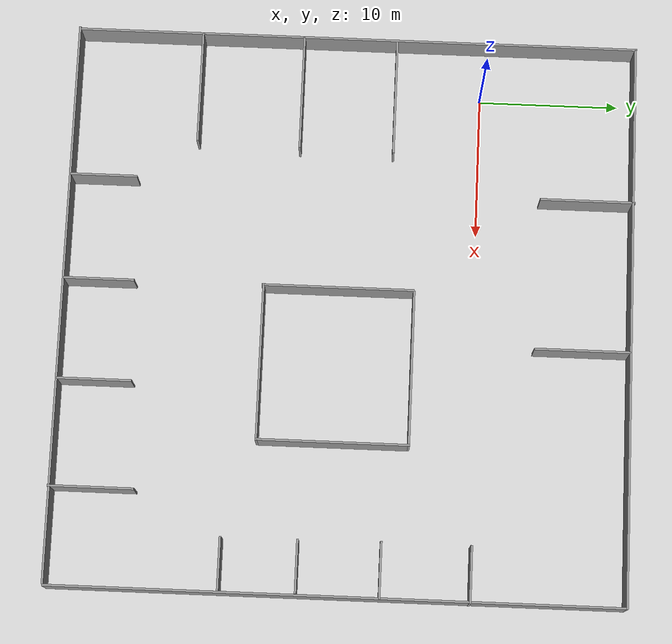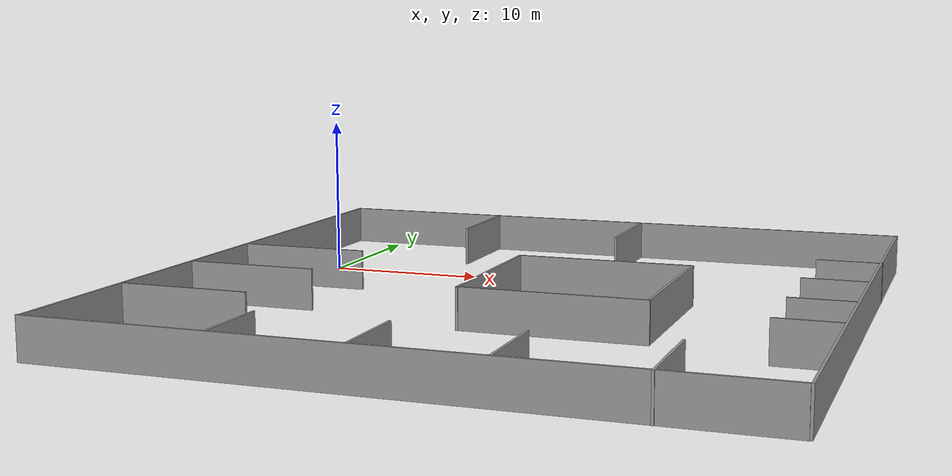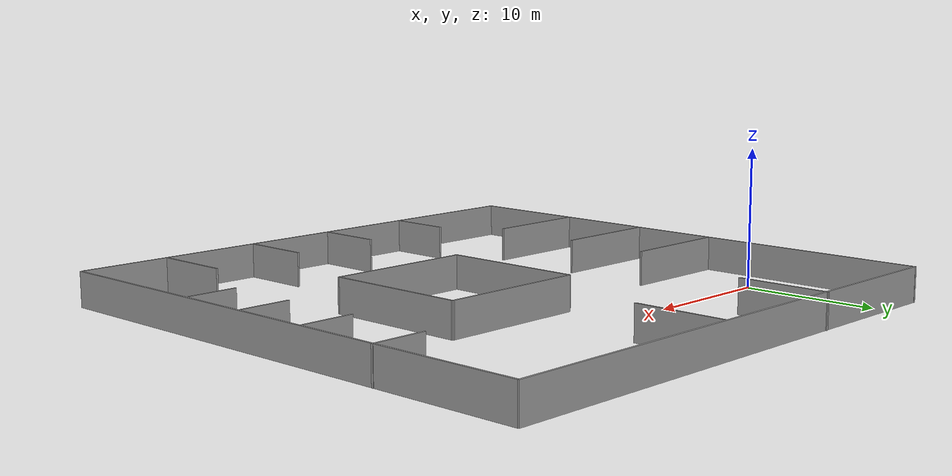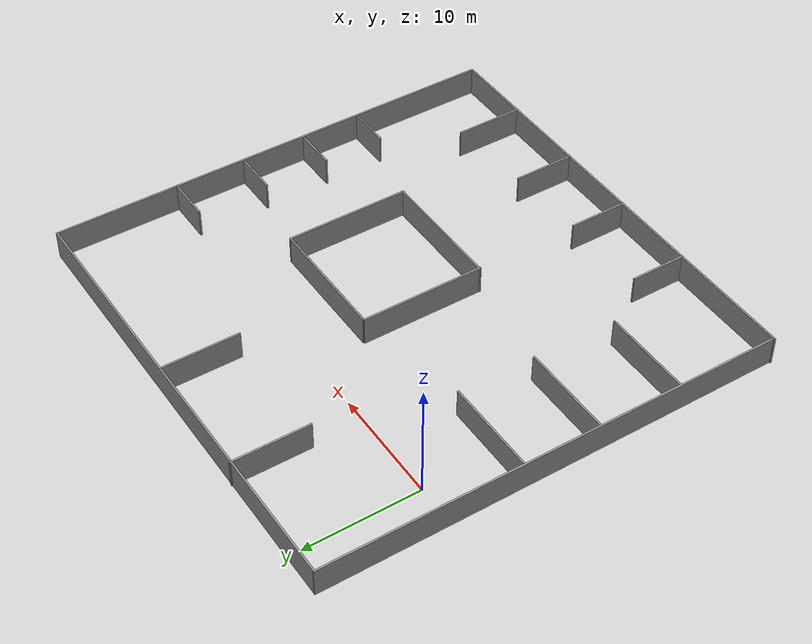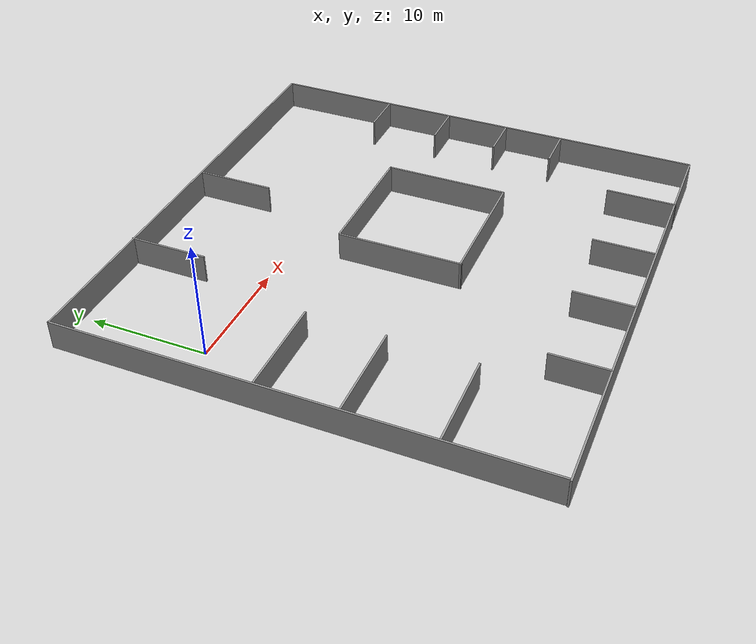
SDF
<?xml version='1.0'?>
<sdf version='1.6'>
  <model name='scrapyard_topview'>
    <pose frame=''>16.2894 -8.9905 0 0 -0 0</pose>
    <link name='Wall_0'>
      <collision name='Wall_0_Collision'>
        <geometry>
          <box>
            <size>40 0.15 2.5</size>
          </box>
        </geometry>
        <pose frame=''>0 0 1.25 0 -0 0</pose>
      </collision>
      <visual name='Wall_0_Visual'>
        <pose frame=''>0 0 1.25 0 -0 0</pose>
        <geometry>
          <box>
            <size>40 0.15 2.5</size>
          </box>
        </geometry>
        <material>
          <script>
            <uri>file://media/materials/scripts/gazebo.material</uri>
            <name>Gazebo/Grey</name>
          </script>
          <ambient>1 1 1 1</ambient>
        </material>
      </visual>
      <pose frame=''>-19.9344 0.077133 0 0 -0 1.5708</pose>
    </link>
    <link name='Wall_10'>
      <collision name='Wall_10_Collision'>
        <geometry>
          <box>
            <size>11.1232 0.15 2.5</size>
          </box>
        </geometry>
        <pose frame=''>0 0 1.25 0 -0 0</pose>
      </collision>
      <visual name='Wall_10_Visual'>
        <pose frame=''>0 0 1.25 0 -0 0</pose>
        <geometry>
          <box>
            <size>11.1232 0.15 2.5</size>
          </box>
        </geometry>
        <material>
          <script>
            <uri>file://media/materials/scripts/gazebo.material</uri>
            <name>Gazebo/Grey</name>
          </script>
          <ambient>1 1 1 1</ambient>
        </material>
      </visual>
      <pose frame=''>3.87286 -5.8997 0 0 -0 0</pose>
    </link>
    <link name='Wall_11'>
      <collision name='Wall_11_Collision'>
        <geometry>
          <box>
            <size>10.75 0.15 2.5</size>
          </box>
        </geometry>
        <pose frame=''>0 0 1.25 0 -0 0</pose>
      </collision>
      <visual name='Wall_11_Visual'>
        <pose frame=''>0 0 1.25 0 -0 0</pose>
        <geometry>
          <box>
            <size>10.75 0.15 2.5</size>
          </box>
        </geometry>
        <material>
          <script>
            <uri>file://media/materials/scripts/gazebo.material</uri>
            <name>Gazebo/Grey</name>
          </script>
          <ambient>1 1 1 1</ambient>
        </material>
      </visual>
      <pose frame=''>9.35939 -0.599696 0 0 -0 1.5708</pose>
    </link>
    <link name='Wall_12'>
      <collision name='Wall_12_Collision'>
        <geometry>
          <box>
            <size>11 0.15 2.5</size>
          </box>
        </geometry>
        <pose frame=''>0 0 1.25 0 -0 0</pose>
      </collision>
      <visual name='Wall_12_Visual'>
        <pose frame=''>0 0 1.25 0 -0 0</pose>
        <geometry>
          <box>
            <size>11 0.15 2.5</size>
          </box>
        </geometry>
        <material>
          <script>
            <uri>file://media/materials/scripts/gazebo.material</uri>
            <name>Gazebo/Grey</name>
          </script>
          <ambient>1 1 1 1</ambient>
        </material>
      </visual>
      <pose frame=''>3.93439 4.7003 0 0 -0 3.14159</pose>
    </link>
    <link name='Wall_14'>
      <collision name='Wall_14_Collision'>
        <geometry>
          <box>
            <size>6.75 0.15 2.5</size>
          </box>
        </geometry>
        <pose frame=''>0 0 1.25 0 -0 0</pose>
      </collision>
      <visual name='Wall_14_Visual'>
        <pose frame=''>0 0 1.25 0 -0 0</pose>
        <geometry>
          <box>
            <size>6.75 0.15 2.5</size>
          </box>
        </geometry>
        <material>
          <script>
            <uri>file://media/materials/scripts/gazebo.material</uri>
            <name>Gazebo/Grey</name>
          </script>
          <ambient>1 1 1 1</ambient>
        </material>
      </visual>
      <pose frame=''>-8.58471 16.766 0 0 0 -1.5708</pose>
    </link>
    <link name='Wall_16'>
      <collision name='Wall_16_Collision'>
        <geometry>
          <box>
            <size>6.75 0.15 2.5</size>
          </box>
        </geometry>
        <pose frame=''>0 0 1.25 0 -0 0</pose>
      </collision>
      <visual name='Wall_16_Visual'>
        <pose frame=''>0 0 1.25 0 -0 0</pose>
        <geometry>
          <box>
            <size>6.75 0.15 2.5</size>
          </box>
        </geometry>
        <material>
          <script>
            <uri>file://media/materials/scripts/gazebo.material</uri>
            <name>Gazebo/Grey</name>
          </script>
          <ambient>1 1 1 1</ambient>
        </material>
      </visual>
      <pose frame=''>2.21721 16.6024 0 0 0 -1.5708</pose>
    </link>
    <link name='Wall_18'>
      <collision name='Wall_18_Collision'>
        <geometry>
          <box>
            <size>4 0.15 2.5</size>
          </box>
        </geometry>
        <pose frame=''>0 0 1.25 0 -0 0</pose>
      </collision>
      <visual name='Wall_18_Visual'>
        <pose frame=''>0 0 1.25 0 -0 0</pose>
        <geometry>
          <box>
            <size>4 0.15 2.5</size>
          </box>
        </geometry>
        <material>
          <script>
            <uri>file://media/materials/scripts/gazebo.material</uri>
            <name>Gazebo/Grey</name>
          </script>
          <ambient>1 1 1 1</ambient>
        </material>
      </visual>
      <pose frame=''>18.0898 9.26412 0 0 -0 0</pose>
    </link>
    <link name='Wall_2'>
      <collision name='Wall_2_Collision'>
        <geometry>
          <box>
            <size>40 0.15 2.5</size>
          </box>
        </geometry>
        <pose frame=''>0 0 1.25 0 -0 0</pose>
      </collision>
      <visual name='Wall_2_Visual'>
        <pose frame=''>0 0 1.25 0 -0 0</pose>
        <geometry>
          <box>
            <size>40 0.15 2.5</size>
          </box>
        </geometry>
        <material>
          <script>
            <uri>file://media/materials/scripts/gazebo.material</uri>
            <name>Gazebo/Grey</name>
          </script>
          <ambient>1 1 1 1</ambient>
        </material>
      </visual>
      <pose frame=''>0.051008 19.9866 0 0 -0 3.14159</pose>
    </link>
    <link name='Wall_20'>
      <collision name='Wall_20_Collision'>
        <geometry>
          <box>
            <size>4 0.15 2.5</size>
          </box>
        </geometry>
        <pose frame=''>0 0 1.25 0 -0 0</pose>
      </collision>
      <visual name='Wall_20_Visual'>
        <pose frame=''>0 0 1.25 0 -0 0</pose>
        <geometry>
          <box>
            <size>4 0.15 2.5</size>
          </box>
        </geometry>
        <material>
          <script>
            <uri>file://media/materials/scripts/gazebo.material</uri>
            <name>Gazebo/Grey</name>
          </script>
          <ambient>1 1 1 1</ambient>
        </material>
      </visual>
      <pose frame=''>18.0538 3.04483 0 0 -0 0</pose>
    </link>
    <link name='Wall_22'>
      <collision name='Wall_22_Collision'>
        <geometry>
          <box>
            <size>3.75 0.15 2.5</size>
          </box>
        </geometry>
        <pose frame=''>0 0 1.25 0 -0 0</pose>
      </collision>
      <visual name='Wall_22_Visual'>
        <pose frame=''>0 0 1.25 0 -0 0</pose>
        <geometry>
          <box>
            <size>3.75 0.15 2.5</size>
          </box>
        </geometry>
        <material>
          <script>
            <uri>file://media/materials/scripts/gazebo.material</uri>
            <name>Gazebo/Grey</name>
          </script>
          <ambient>1 1 1 1</ambient>
        </material>
      </visual>
      <pose frame=''>18.0251 -2.70654 0 0 -0 0</pose>
    </link>
    <link name='Wall_24'>
      <collision name='Wall_24_Collision'>
        <geometry>
          <box>
            <size>3.75 0.15 2.5</size>
          </box>
        </geometry>
        <pose frame=''>0 0 1.25 0 -0 0</pose>
      </collision>
      <visual name='Wall_24_Visual'>
        <pose frame=''>0 0 1.25 0 -0 0</pose>
        <geometry>
          <box>
            <size>3.75 0.15 2.5</size>
          </box>
        </geometry>
        <material>
          <script>
            <uri>file://media/materials/scripts/gazebo.material</uri>
            <name>Gazebo/Grey</name>
          </script>
          <ambient>1 1 1 1</ambient>
        </material>
      </visual>
      <pose frame=''>18.0405 -8.02831 0 0 -0 0</pose>
    </link>
    <link name='Wall_26'>
      <collision name='Wall_26_Collision'>
        <geometry>
          <box>
            <size>6 0.15 2.5</size>
          </box>
        </geometry>
        <pose frame=''>0 0 1.25 0 -0 0</pose>
      </collision>
      <visual name='Wall_26_Visual'>
        <pose frame=''>0 0 1.25 0 -0 0</pose>
        <geometry>
          <box>
            <size>6 0.15 2.5</size>
          </box>
        </geometry>
        <material>
          <script>
            <uri>file://media/materials/scripts/gazebo.material</uri>
            <name>Gazebo/Grey</name>
          </script>
          <ambient>1 1 1 1</ambient>
        </material>
      </visual>
      <pose frame=''>13.1516 -17.141 0 0 0 -1.5708</pose>
    </link>
    <link name='Wall_28'>
      <collision name='Wall_28_Collision'>
        <geometry>
          <box>
            <size>5.25 0.15 2.5</size>
          </box>
        </geometry>
        <pose frame=''>0 0 1.25 0 -0 0</pose>
      </collision>
      <visual name='Wall_28_Visual'>
        <pose frame=''>0 0 1.25 0 -0 0</pose>
        <geometry>
          <box>
            <size>5.25 0.15 2.5</size>
          </box>
        </geometry>
        <material>
          <script>
            <uri>file://media/materials/scripts/gazebo.material</uri>
            <name>Gazebo/Grey</name>
          </script>
          <ambient>1 1 1 1</ambient>
        </material>
      </visual>
      <pose frame=''>5.60258 -17.3848 0 0 0 -1.5708</pose>
    </link>
    <link name='Wall_30'>
      <collision name='Wall_30_Collision'>
        <geometry>
          <box>
            <size>5 0.15 2.5</size>
          </box>
        </geometry>
        <pose frame=''>0 0 1.25 0 -0 0</pose>
      </collision>
      <visual name='Wall_30_Visual'>
        <pose frame=''>0 0 1.25 0 -0 0</pose>
        <geometry>
          <box>
            <size>5 0.15 2.5</size>
          </box>
        </geometry>
        <material>
          <script>
            <uri>file://media/materials/scripts/gazebo.material</uri>
            <name>Gazebo/Grey</name>
          </script>
          <ambient>1 1 1 1</ambient>
        </material>
      </visual>
      <pose frame=''>-1.57518 -17.5073 0 0 0 -1.5708</pose>
    </link>
    <link name='Wall_32'>
      <collision name='Wall_32_Collision'>
        <geometry>
          <box>
            <size>4.75 0.15 2.5</size>
          </box>
        </geometry>
        <pose frame=''>0 0 1.25 0 -0 0</pose>
      </collision>
      <visual name='Wall_32_Visual'>
        <pose frame=''>0 0 1.25 0 -0 0</pose>
        <geometry>
          <box>
            <size>4.75 0.15 2.5</size>
          </box>
        </geometry>
        <material>
          <script>
            <uri>file://media/materials/scripts/gazebo.material</uri>
            <name>Gazebo/Grey</name>
          </script>
          <ambient>1 1 1 1</ambient>
        </material>
      </visual>
      <pose frame=''>-9.12421 -17.6298 0 0 0 -1.5708</pose>
    </link>
    <link name='Wall_34'>
      <collision name='Wall_34_Collision'>
        <geometry>
          <box>
            <size>8 0.15 2.5</size>
          </box>
        </geometry>
        <pose frame=''>0 0 1.25 0 -0 0</pose>
      </collision>
      <visual name='Wall_34_Visual'>
        <pose frame=''>0 0 1.25 0 -0 0</pose>
        <geometry>
          <box>
            <size>8 0.15 2.5</size>
          </box>
        </geometry>
        <material>
          <script>
            <uri>file://media/materials/scripts/gazebo.material</uri>
            <name>Gazebo/Grey</name>
          </script>
          <ambient>1 1 1 1</ambient>
        </material>
      </visual>
      <pose frame=''>-15.9659 -11.1222 0 0 -0 0</pose>
    </link>
    <link name='Wall_36'>
      <collision name='Wall_36_Collision'>
        <geometry>
          <box>
            <size>8.25 0.15 2.5</size>
          </box>
        </geometry>
        <pose frame=''>0 0 1.25 0 -0 0</pose>
      </collision>
      <visual name='Wall_36_Visual'>
        <pose frame=''>0 0 1.25 0 -0 0</pose>
        <geometry>
          <box>
            <size>8.25 0.15 2.5</size>
          </box>
        </geometry>
        <material>
          <script>
            <uri>file://media/materials/scripts/gazebo.material</uri>
            <name>Gazebo/Grey</name>
          </script>
          <ambient>1 1 1 1</ambient>
        </material>
      </visual>
      <pose frame=''>-15.8409 -3.82065 0 0 -0 0</pose>
    </link>
    <link name='Wall_38'>
      <collision name='Wall_38_Collision'>
        <geometry>
          <box>
            <size>8.25 0.15 2.5</size>
          </box>
        </geometry>
        <pose frame=''>0 0 1.25 0 -0 0</pose>
      </collision>
      <visual name='Wall_38_Visual'>
        <pose frame=''>0 0 1.25 0 -0 0</pose>
        <geometry>
          <box>
            <size>8.25 0.15 2.5</size>
          </box>
        </geometry>
        <material>
          <script>
            <uri>file://media/materials/scripts/gazebo.material</uri>
            <name>Gazebo/Grey</name>
          </script>
          <ambient>1 1 1 1</ambient>
        </material>
      </visual>
      <pose frame=''>-15.7171 2.86209 0 0 -0 0</pose>
    </link>
    <link name='Wall_4'>
      <collision name='Wall_4_Collision'>
        <geometry>
          <box>
            <size>40 0.15 2.5</size>
          </box>
        </geometry>
        <pose frame=''>0 0 1.25 0 -0 0</pose>
      </collision>
      <visual name='Wall_4_Visual'>
        <pose frame=''>0 0 1.25 0 -0 0</pose>
        <geometry>
          <box>
            <size>40 0.15 2.5</size>
          </box>
        </geometry>
        <material>
          <script>
            <uri>file://media/materials/scripts/gazebo.material</uri>
            <name>Gazebo/Grey</name>
          </script>
          <ambient>1 1 1 1</ambient>
        </material>
      </visual>
      <pose frame=''>19.9836 -0.049497 0 0 0 -1.5708</pose>
    </link>
    <link name='Wall_7'>
      <collision name='Wall_7_Collision'>
        <geometry>
          <box>
            <size>40 0.15 2.5</size>
          </box>
        </geometry>
        <pose frame=''>0 0 1.25 0 -0 0</pose>
      </collision>
      <visual name='Wall_7_Visual'>
        <pose frame=''>0 0 1.25 0 -0 0</pose>
        <geometry>
          <box>
            <size>40 0.15 2.5</size>
          </box>
        </geometry>
        <material>
          <script>
            <uri>file://media/materials/scripts/gazebo.material</uri>
            <name>Gazebo/Grey</name>
          </script>
          <ambient>1 1 1 1</ambient>
        </material>
      </visual>
      <pose frame=''>-0.089781 -20.0182 0 0 -0 0</pose>
    </link>
    <link name='Wall_9'>
      <collision name='Wall_9_Collision'>
        <geometry>
          <box>
            <size>10.75 0.15 2.5</size>
          </box>
        </geometry>
        <pose frame=''>0 0 1.25 0 -0 0</pose>
      </collision>
      <visual name='Wall_9_Visual'>
        <pose frame=''>0 0 1.25 0 -0 0</pose>
        <geometry>
          <box>
            <size>10.75 0.15 2.5</size>
          </box>
        </geometry>
        <material>
          <script>
            <uri>file://media/materials/scripts/gazebo.material</uri>
            <name>Gazebo/Grey</name>
          </script>
          <ambient>1 1 1 1</ambient>
        </material>
      </visual>
      <pose frame=''>-1.61367 -0.661224 0 0 0 -1.5708</pose>
    </link>
    <static>1</static>
  </model>
</sdf>
